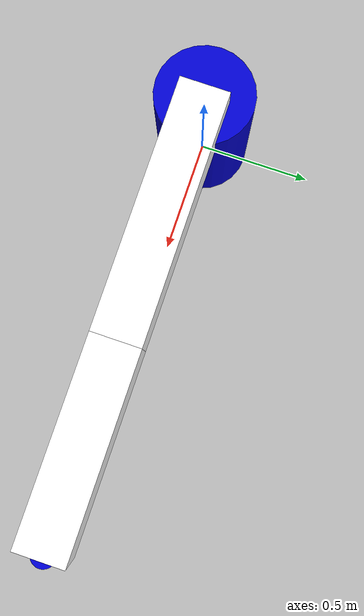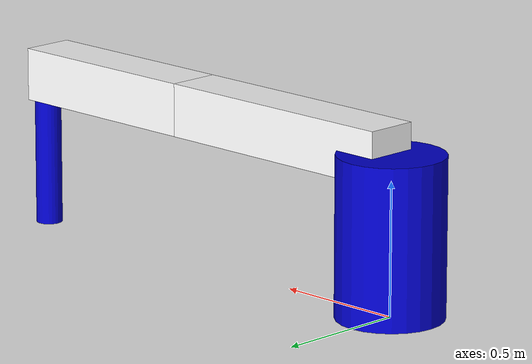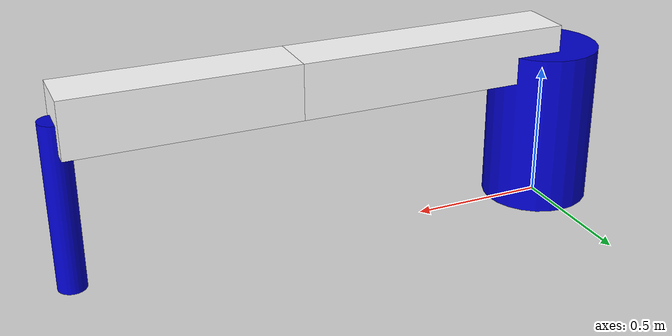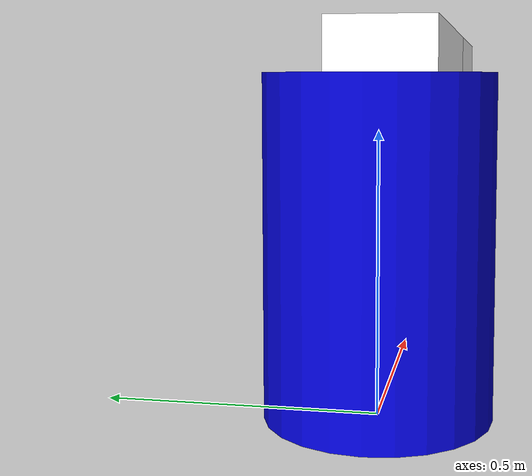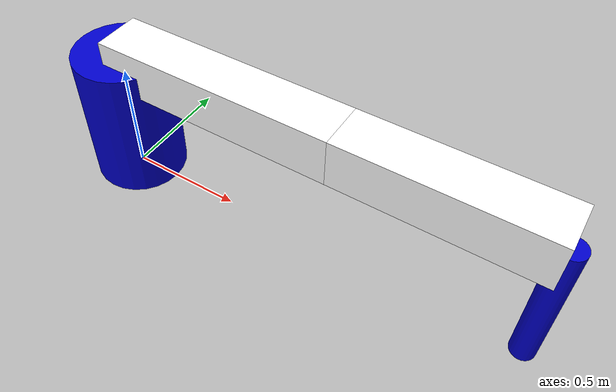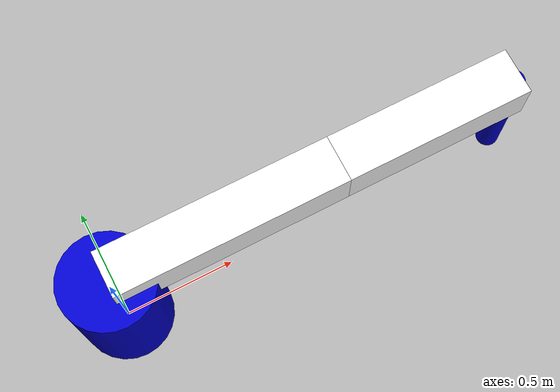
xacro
<?xml version="1.0"?>

<robot name="scara" xmlns:xacro="http://www.ros.org/wiki/xacro">

  <!-- CONSTANTS -->
  <xacro:property name="PI" value="3.1415926535897931"/>

  <!-- Base params -->
  <xacro:property name="BASE_L" value="0.6"/>
  <xacro:property name="BASE_R" value="0.2"/>
  <!-- dof1 params -->
  <xacro:property name="DOF1_L" value="1.0"/>
  <!-- dof2 params -->
  <xacro:property name="DOF2_L" value="0.8"/>
  <!-- dof3 params -->
  <xacro:property name="DOF3_L" value="${BASE_L}"/>

  <xacro:property name="MASS" value="1.0"/>

  <!-- MATERIALS -->
  <material name="blue">
    <color rgba="0 0 0.8 1"/>
  </material>

  <material name="white">
    <color rgba="1 1 1 1"/>
  </material>

  <!-- 1. World reference -->
  <link name="world"/>

  <!-- 2. Robot base link -->
  <link name="robot_base">
    <visual>
      <geometry>
        <cylinder length="${BASE_L}" radius="${BASE_R}"/>
      </geometry>
      <material name="blue"/>

      <origin xyz="0 0 0" rpy="0 0 0"/>
    </visual>

    <inertial>
      <mass value="${MASS}"/>
      <inertia ixx="1.0" ixy="0.0" ixz="0.0" iyy="1.0" iyz="0.0" izz="1.0"/>
    </inertial>
  </link>

  <joint name="base2world" type="fixed">
    <parent link="world"/>
    <child link="robot_base"/>

    <origin xyz="0 0 ${BASE_L/2}" rpy="0 0 0"/>
  </joint>

  <!-- 3. Robot arm links -->
  <!-- DOF 1 (R) -->
  <link name="robot_arm_dof1">
    <visual>
      <geometry>
        <box size="${DOF1_L} 0.2 0.2"/>
      </geometry>

      <material name="white"/>

      <origin xyz="${DOF1_L / 2} 0 0" rpy="0 0 0"/>
    </visual>

    <inertial>
      <mass value="${MASS}" />
      <inertia ixx="1.0" ixy="0.0" ixz="0.0" iyy="1.0" iyz="0.0" izz="1.0" />

      <origin xyz="${DOF1_L / 2} 0 0" rpy="0 0 0"/>
    </inertial>
  </link>

  <joint name="dof1_joint" type="continuous">
    <parent link="robot_base"/>
    <child link="robot_arm_dof1"/>
    <axis xyz="0 0 1"/>

    <origin xyz="0 0 ${BASE_L / 2}"/>
  </joint>

  <!-- DOF 2 (R) -->
  <link name="robot_arm_dof2">
    <visual>
      <geometry>
        <box size="${DOF2_L} 0.2 0.2"/>
      </geometry>

      <material name="white"/>

      <origin xyz="${DOF2_L / 2} 0 0" rpy="0 0 0"/>
    </visual>

    <inertial>
      <mass value="${MASS}" />
      <inertia ixx="1.0" ixy="0.0" ixz="0.0" iyy="1.0" iyz="0.0" izz="1.0" />

      <origin xyz="${DOF2_L / 2} 0 0" rpy="0 0 0"/>
    </inertial>
  </link>

  <joint name="dof2_joint" type="continuous">
    <parent link="robot_arm_dof1"/>
    <child link="robot_arm_dof2"/>
    <axis xyz="0 0 1"/>

    <origin xyz="${DOF1_L} 0 0"/>
  </joint>

  <!-- DOF 3 (T) -->
  <link name="robot_arm_dof3">
    <visual>
      <geometry>
        <cylinder length="${DOF3_L}" radius="${BASE_R / 4}"/>
      </geometry>

      <material name="blue"/>

      <origin xyz="0 0 ${-DOF3_L / 2}" rpy="0 0 0"/>
    </visual>

    <inertial>
      <mass value="${MASS}" />
      <inertia ixx="1.0" ixy="0.0" ixz="0.0" iyy="1.0" iyz="0.0" izz="1.0" />

      <origin xyz="0 0 ${-DOF3_L / 2}" rpy="0 0 0"/>
    </inertial>
  </link>

  <joint name="dof3_joint" type="prismatic">
    <parent link="robot_arm_dof2"/>
    <child link="robot_arm_dof3"/>
    <limit effort="1000.0" lower="0" upper="${DOF3_L}" velocity="0.5"/>

    <axis xyz="0 0 1"/>

    <origin rpy="0 0 0" xyz="${DOF2_L} 0 0"/>
  </joint>

  <!-- TODO: Endeffector link + Joint -->

  <!-- Actually, not needed. Just to be for future -->
  <!--                GAZEBO RELATED PART                             -->
  <!-- ROS Control plugin for Gazebo -->
  <gazebo>
    <plugin name="gazebo_ros_control" filename="libgazebo_ros_control.so">
      <robotNamespace>/scara</robotNamespace>
    </plugin>
  </gazebo>

  <!-- transmission -->
  <transmission name="tran0">
    <type>transmission_interface/SimpleTransmission</type>
    <joint name="dof1_joint">
      <hardwareInterface>hardware_interface/EffortJointInterface</hardwareInterface>
    </joint>
    <actuator name="motor0">
      <hardwareInterface>hardware_interface/EffortJointInterface</hardwareInterface>
      <mechanicalReduction>1</mechanicalReduction>
    </actuator>
  </transmission>

  <transmission name="tran1">
    <type>transmission_interface/SimpleTransmission</type>
    <joint name="dof2_joint">
      <hardwareInterface>hardware_interface/EffortJointInterface</hardwareInterface>
    </joint>
    <actuator name="motor1">
      <hardwareInterface>hardware_interface/EffortJointInterface</hardwareInterface>
      <mechanicalReduction>1</mechanicalReduction>
    </actuator>
  </transmission>

  <transmission name="tran2">
    <type>transmission_interface/SimpleTransmission</type>
    <joint name="dof3_joint">
      <hardwareInterface>hardware_interface/EffortJointInterface</hardwareInterface>
    </joint>
    <actuator name="motor2">
      <hardwareInterface>hardware_interface/EffortJointInterface</hardwareInterface>
      <mechanicalReduction>1</mechanicalReduction>
    </actuator>
  </transmission>

</robot>
